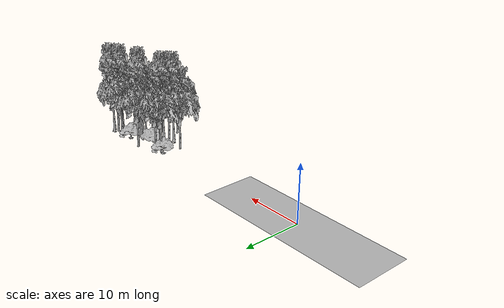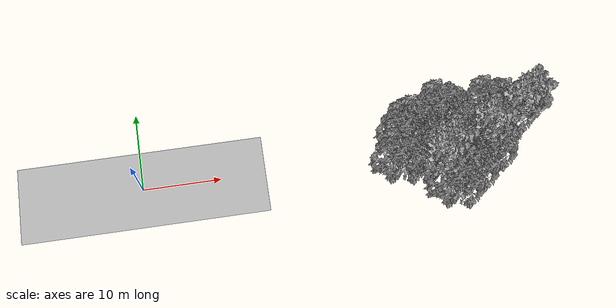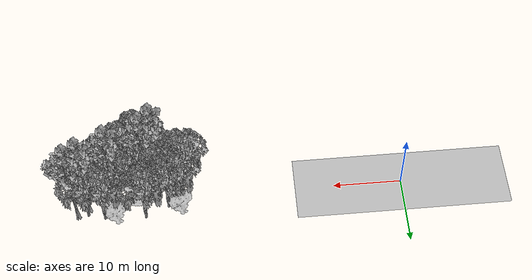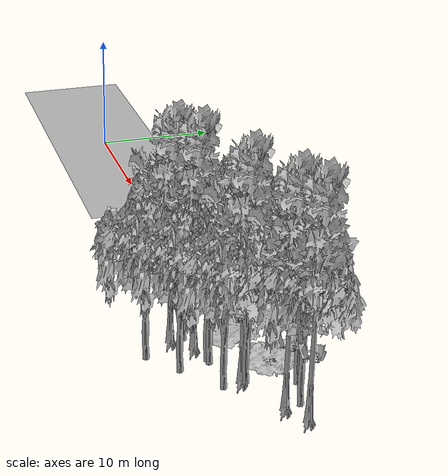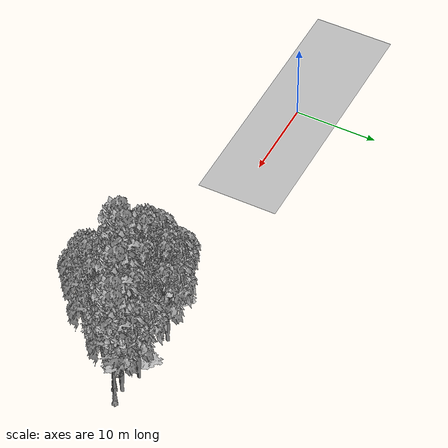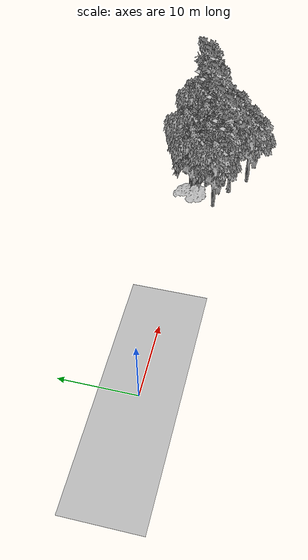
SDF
<sdf version="1.7">
 <world name="default">
  <model name="ground_plane">
   <static>1</static>
   <link name="link">
    <collision name="collision">
     <pose>-50 0 0 0 -0 0</pose>
     <geometry><plane><normal>0 0 1</normal><size>100 100</size></plane></geometry>
     <surface><contact><ode><min_depth>0.01</min_depth><max_vel>0</max_vel></ode></contact></surface>
    </collision>
    <visual name="grass">
     <cast_shadows>0</cast_shadows>
     <geometry>
      <mesh>
       <scale>0.5814285714285714 0.18142857142857144 0.1</scale>
       <uri>file://grass_plane/meshes/grass_plane.dae</uri>
      </mesh>
     </geometry>
    </visual>
   </link>
  </model>
  <model name="Tree 43">
   <static>1</static>
   <pose>33.01716945479613 0.8987317899398324 0 1.57079 -0 0</pose>
   <link name="link">
    <collision name="collision">
     <geometry><mesh><scale>3.5 5 3.5</scale><uri>model://tree_2/meshes/tree_2.obj</uri></mesh></geometry>
    </collision>
    <visual name="visual">
     <geometry><mesh><scale>3.5 5 3.5</scale><uri>model://tree_2/meshes/tree_2.obj</uri></mesh></geometry>
    </visual>
   </link>
  </model>
  <model name="Tree 46">
   <static>1</static>
   <pose>35.90785391018048 -3.945385919407542 0 1.57079 -0 0</pose>
   <link name="link">
    <collision name="collision">
     <geometry><mesh><scale>3.5 5 3.5</scale><uri>model://tree_9/meshes/tree_9.obj</uri></mesh></geometry>
    </collision>
    <visual name="visual">
     <geometry><mesh><scale>3.5 5 3.5</scale><uri>model://tree_9/meshes/tree_9.obj</uri></mesh></geometry>
    </visual>
   </link>
  </model>
  <model name="Tree 75">
   <static>1</static>
   <pose>34.12366890437271 1.3034493759719155 0 1.57079 -0 0</pose>
   <link name="link">
    <collision name="collision">
     <geometry><mesh><scale>3.5 5 3.5</scale><uri>model://tree_2/meshes/tree_2.obj</uri></mesh></geometry>
    </collision>
    <visual name="visual">
     <geometry><mesh><scale>3.5 5 3.5</scale><uri>model://tree_2/meshes/tree_2.obj</uri></mesh></geometry>
    </visual>
   </link>
  </model>
  <model name="Tree 76">
   <static>1</static>
   <pose>42.594119957240835 -2.305338431142104 0 1.57079 -0 0</pose>
   <link name="link">
    <collision name="collision">
     <geometry><mesh><scale>3.5 5 3.5</scale><uri>model://tree_2/meshes/tree_2.obj</uri></mesh></geometry>
    </collision>
    <visual name="visual">
     <geometry><mesh><scale>3.5 5 3.5</scale><uri>model://tree_2/meshes/tree_2.obj</uri></mesh></geometry>
    </visual>
   </link>
  </model>
  <model name="Tree 102">
   <static>1</static>
   <pose>37.4352874363354 2.8197682651878218 0 1.57079 -0 0</pose>
   <link name="link">
    <collision name="collision">
     <geometry><mesh><scale>3.5 5 3.5</scale><uri>model://tree_2/meshes/tree_2.obj</uri></mesh></geometry>
    </collision>
    <visual name="visual">
     <geometry><mesh><scale>3.5 5 3.5</scale><uri>model://tree_2/meshes/tree_2.obj</uri></mesh></geometry>
    </visual>
   </link>
  </model>
  <model name="Tree 121">
   <static>1</static>
   <pose>41.67238201024499 1.7553577720353957 0 1.57079 -0 0</pose>
   <link name="link">
    <collision name="collision">
     <geometry><mesh><scale>4 2.5 4</scale><uri>model://tree_1/meshes/tree_1.obj</uri></mesh></geometry>
    </collision>
    <visual name="visual">
     <geometry><mesh><scale>4 2.5 4</scale><uri>model://tree_1/meshes/tree_1.obj</uri></mesh></geometry>
    </visual>
   </link>
  </model>
  <model name="Tree 148">
   <static>1</static>
   <pose>39.1189821731807 -2.343954693988996 0 1.57079 -0 0</pose>
   <link name="link">
    <collision name="collision">
     <geometry><mesh><scale>3.5 5 3.5</scale><uri>model://tree_2/meshes/tree_2.obj</uri></mesh></geometry>
    </collision>
    <visual name="visual">
     <geometry><mesh><scale>3.5 5 3.5</scale><uri>model://tree_2/meshes/tree_2.obj</uri></mesh></geometry>
    </visual>
   </link>
  </model>
  <model name="Tree 157">
   <static>1</static>
   <pose>43.29894559389416 2.511887712203279 0 1.57079 -0 0</pose>
   <link name="link">
    <collision name="collision">
     <geometry><mesh><scale>3.5 5 3.5</scale><uri>model://tree_2/meshes/tree_2.obj</uri></mesh></geometry>
    </collision>
    <visual name="visual">
     <geometry><mesh><scale>3.5 5 3.5</scale><uri>model://tree_2/meshes/tree_2.obj</uri></mesh></geometry>
    </visual>
   </link>
  </model>
  <model name="Tree 209">
   <static>1</static>
   <pose>42.04202713985357 -0.8532745889292741 0 1.57079 -0 0</pose>
   <link name="link">
    <collision name="collision">
     <geometry><mesh><scale>3.5 5 3.5</scale><uri>model://tree_9/meshes/tree_9.obj</uri></mesh></geometry>
    </collision>
    <visual name="visual">
     <geometry><mesh><scale>3.5 5 3.5</scale><uri>model://tree_9/meshes/tree_9.obj</uri></mesh></geometry>
    </visual>
   </link>
  </model>
  <model name="Tree 217">
   <static>1</static>
   <pose>45.728652374961996 0.8174089329160097 0 1.57079 -0 0</pose>
   <link name="link">
    <collision name="collision">
     <geometry><mesh><scale>3.5 5 3.5</scale><uri>model://tree_9/meshes/tree_9.obj</uri></mesh></geometry>
    </collision>
    <visual name="visual">
     <geometry><mesh><scale>3.5 5 3.5</scale><uri>model://tree_9/meshes/tree_9.obj</uri></mesh></geometry>
    </visual>
   </link>
  </model>
  <model name="Tree 264">
   <static>1</static>
   <pose>36.130566143701614 -3.1129971376516643 0 1.57079 -0 0</pose>
   <link name="link">
    <collision name="collision">
     <geometry><mesh><scale>3.5 5 3.5</scale><uri>model://tree_2/meshes/tree_2.obj</uri></mesh></geometry>
    </collision>
    <visual name="visual">
     <geometry><mesh><scale>3.5 5 3.5</scale><uri>model://tree_2/meshes/tree_2.obj</uri></mesh></geometry>
    </visual>
   </link>
  </model>
  <model name="Tree 281">
   <static>1</static>
   <pose>39.51330521593036 -2.2969421825206062 0 1.57079 -0 0</pose>
   <link name="link">
    <collision name="collision">
     <geometry><mesh><scale>3.5 5 3.5</scale><uri>model://tree_2/meshes/tree_2.obj</uri></mesh></geometry>
    </collision>
    <visual name="visual">
     <geometry><mesh><scale>3.5 5 3.5</scale><uri>model://tree_2/meshes/tree_2.obj</uri></mesh></geometry>
    </visual>
   </link>
  </model>
  <model name="Tree 289">
   <static>1</static>
   <pose>37.26940093706257 -2.6612550521257035 0 1.57079 -0 0</pose>
   <link name="link">
    <collision name="collision">
     <geometry><mesh><scale>3.5 5 3.5</scale><uri>model://tree_9/meshes/tree_9.obj</uri></mesh></geometry>
    </collision>
    <visual name="visual">
     <geometry><mesh><scale>3.5 5 3.5</scale><uri>model://tree_9/meshes/tree_9.obj</uri></mesh></geometry>
    </visual>
   </link>
  </model>
  <model name="Tree 304">
   <static>1</static>
   <pose>32.44985958467153 0.9343702625602965 0 1.57079 -0 0</pose>
   <link name="link">
    <collision name="collision">
     <geometry><mesh><scale>4 2.5 4</scale><uri>model://tree_1/meshes/tree_1.obj</uri></mesh></geometry>
    </collision>
    <visual name="visual">
     <geometry><mesh><scale>4 2.5 4</scale><uri>model://tree_1/meshes/tree_1.obj</uri></mesh></geometry>
    </visual>
   </link>
  </model>
  <model name="Tree 320">
   <static>1</static>
   <pose>37.446146966956974 -0.33624052006129723 0 1.57079 -0 0</pose>
   <link name="link">
    <collision name="collision">
     <geometry><mesh><scale>3 2 3</scale><uri>model://tree_3/meshes/tree_3.obj</uri></mesh></geometry>
    </collision>
    <visual name="visual">
     <geometry><mesh><scale>3 2 3</scale><uri>model://tree_3/meshes/tree_3.obj</uri></mesh></geometry>
    </visual>
   </link>
  </model>
  <model name="Tree 321">
   <static>1</static>
   <pose>47.32767706342494 1.788901462396634 0 1.57079 -0 0</pose>
   <link name="link">
    <collision name="collision">
     <geometry><mesh><scale>3.5 5 3.5</scale><uri>model://tree_9/meshes/tree_9.obj</uri></mesh></geometry>
    </collision>
    <visual name="visual">
     <geometry><mesh><scale>3.5 5 3.5</scale><uri>model://tree_9/meshes/tree_9.obj</uri></mesh></geometry>
    </visual>
   </link>
  </model>
  <model name="Tree 335">
   <static>1</static>
   <pose>45.71693178645695 1.807423554182595 0 1.57079 -0 0</pose>
   <link name="link">
    <collision name="collision">
     <geometry><mesh><scale>3.5 5 3.5</scale><uri>model://tree_2/meshes/tree_2.obj</uri></mesh></geometry>
    </collision>
    <visual name="visual">
     <geometry><mesh><scale>3.5 5 3.5</scale><uri>model://tree_2/meshes/tree_2.obj</uri></mesh></geometry>
    </visual>
   </link>
  </model>
  <model name="Tree 338">
   <static>1</static>
   <pose>37.77035852197895 -6.217981149425723 0 1.57079 -0 0</pose>
   <link name="link">
    <collision name="collision">
     <geometry><mesh><scale>3.5 5 3.5</scale><uri>model://tree_2/meshes/tree_2.obj</uri></mesh></geometry>
    </collision>
    <visual name="visual">
     <geometry><mesh><scale>3.5 5 3.5</scale><uri>model://tree_2/meshes/tree_2.obj</uri></mesh></geometry>
    </visual>
   </link>
  </model>
  <model name="Tree 350">
   <static>1</static>
   <pose>42.42801675971114 -0.7258253617119017 0 1.57079 -0 0</pose>
   <link name="link">
    <collision name="collision">
     <geometry><mesh><scale>3.5 5 3.5</scale><uri>model://tree_2/meshes/tree_2.obj</uri></mesh></geometry>
    </collision>
    <visual name="visual">
     <geometry><mesh><scale>3.5 5 3.5</scale><uri>model://tree_2/meshes/tree_2.obj</uri></mesh></geometry>
    </visual>
   </link>
  </model>
  <model name="Tree 352">
   <static>1</static>
   <pose>39.429430444949205 0.44402791853624635 0 1.57079 -0 0</pose>
   <link name="link">
    <collision name="collision">
     <geometry><mesh><scale>3.5 5 3.5</scale><uri>model://tree_2/meshes/tree_2.obj</uri></mesh></geometry>
    </collision>
    <visual name="visual">
     <geometry><mesh><scale>3.5 5 3.5</scale><uri>model://tree_2/meshes/tree_2.obj</uri></mesh></geometry>
    </visual>
   </link>
  </model>
  <model name="Tree 384">
   <static>1</static>
   <pose>31.764939631576752 -2.38889581538324 0 1.57079 -0 0</pose>
   <link name="link">
    <collision name="collision">
     <geometry><mesh><scale>3.5 5 3.5</scale><uri>model://tree_2/meshes/tree_2.obj</uri></mesh></geometry>
    </collision>
    <visual name="visual">
     <geometry><mesh><scale>3.5 5 3.5</scale><uri>model://tree_2/meshes/tree_2.obj</uri></mesh></geometry>
    </visual>
   </link>
  </model>
  <model name="Tree 472">
   <static>1</static>
   <pose>35.474396269032155 -0.652996147151164 0 1.57079 -0 0</pose>
   <link name="link">
    <collision name="collision">
     <geometry><mesh><scale>3.5 5 3.5</scale><uri>model://tree_2/meshes/tree_2.obj</uri></mesh></geometry>
    </collision>
    <visual name="visual">
     <geometry><mesh><scale>3.5 5 3.5</scale><uri>model://tree_2/meshes/tree_2.obj</uri></mesh></geometry>
    </visual>
   </link>
  </model>
  <model name="Tree 493">
   <static>1</static>
   <pose>39.938702574372016 -4.464385148652493 0 1.57079 -0 0</pose>
   <link name="link">
    <collision name="collision">
     <geometry><mesh><scale>3.5 5 3.5</scale><uri>model://tree_2/meshes/tree_2.obj</uri></mesh></geometry>
    </collision>
    <visual name="visual">
     <geometry><mesh><scale>3.5 5 3.5</scale><uri>model://tree_2/meshes/tree_2.obj</uri></mesh></geometry>
    </visual>
   </link>
  </model>
 </world>
</sdf>
